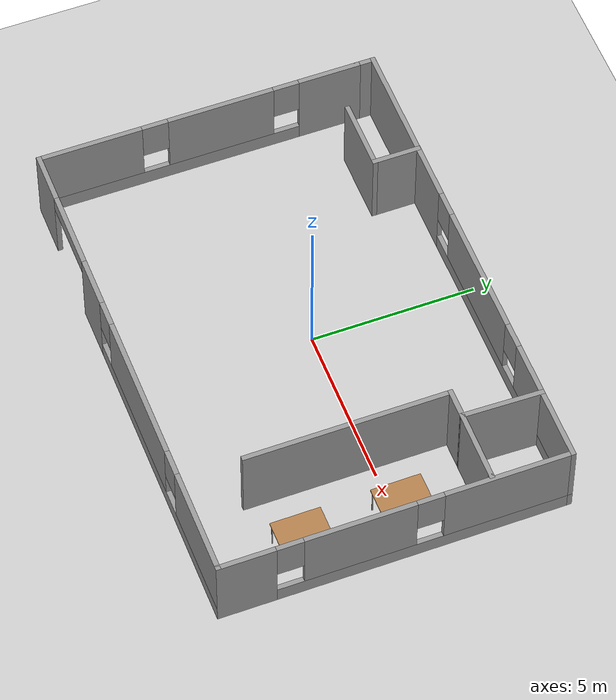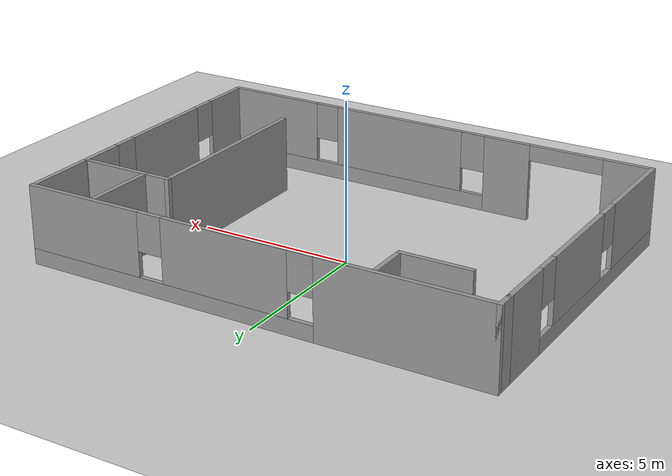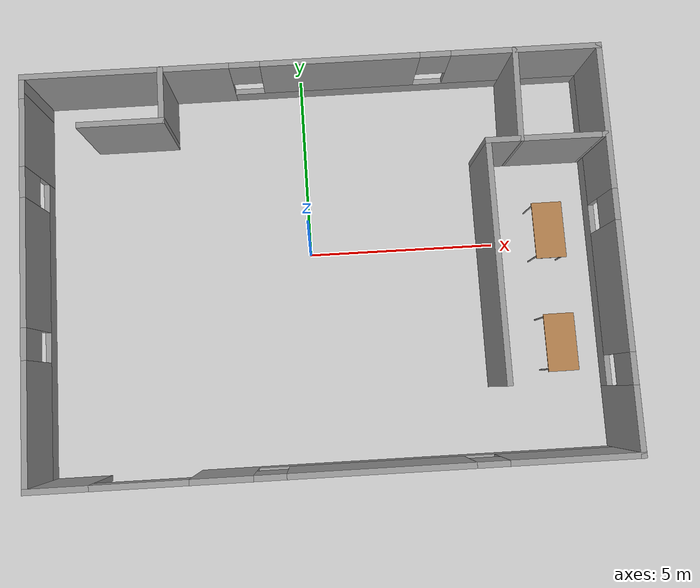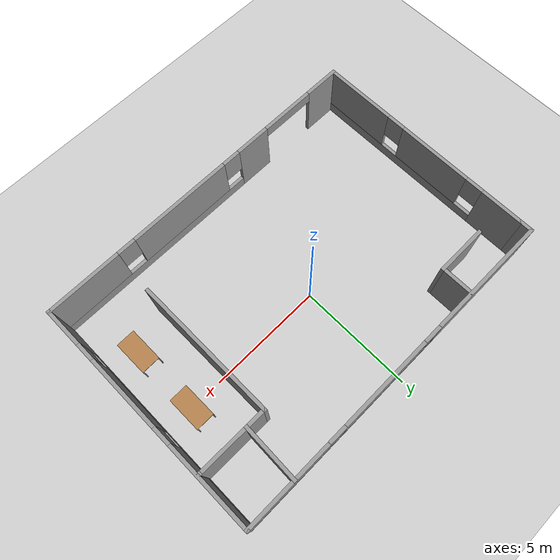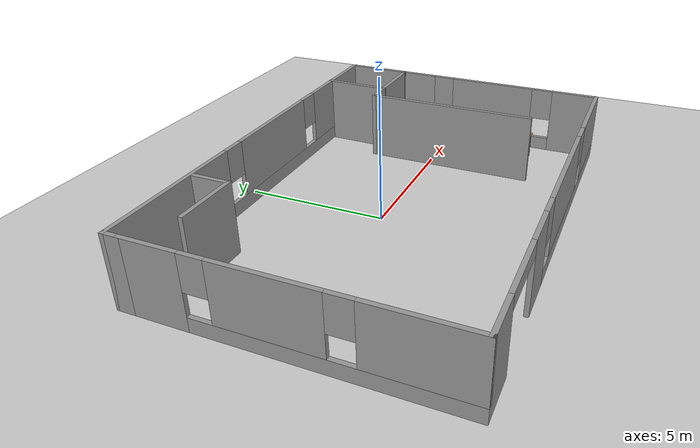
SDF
<sdf version="1.7">
 <world name="default">
  <light name="sun" type="directional">
   <pose>0 0 10 0 -0 0</pose>
   <diffuse>0.8 0.8 0.8 1</diffuse>
   <specular>0.2 0.2 0.2 1</specular>
   <attenuation>
    <range>1000</range>
    <constant>0.9</constant>
    <linear>0.01</linear>
    <quadratic>0.001</quadratic>
   </attenuation>
   <direction>-0.5 0.1 -0.9</direction>
   <spot><inner_angle>0</inner_angle><outer_angle>0</outer_angle><falloff>0</falloff></spot>
  </light>
  <model name="ground_plane">
   <static>1</static>
   <link name="link">
    <collision name="collision">
     <geometry><plane><normal>0 0 1</normal><size>100 100</size></plane></geometry>
     <surface><friction><ode><mu>100</mu><mu2>50</mu2></ode></friction></surface>
    </collision>
    <visual name="visual">
     <cast_shadows>0</cast_shadows>
     <geometry><plane><normal>0 0 1</normal><size>100 100</size></plane></geometry>
     <material>
      <script><uri>file://media/materials/scripts/gazebo.material</uri><name>Gazebo/Grey</name></script>
     </material>
    </visual>
   </link>
  </model>
  <gravity>0 0 -9.8</gravity>
  <magnetic_field>6e-06 2.3e-05 -4.2e-05</magnetic_field>
  <atmosphere type="adiabatic"/>
  <physics type="ode">
   <max_step_size>0.001</max_step_size>
   <real_time_factor>1</real_time_factor>
   <real_time_update_rate>1000</real_time_update_rate>
  </physics>
  <scene><ambient>0.4 0.4 0.4 1</ambient><background>0.7 0.7 0.7 1</background><shadows>1</shadows></scene>
  <audio><device>default</device></audio>
  <spherical_coordinates>
   <surface_model>EARTH_WGS84</surface_model>
   <latitude_deg>0</latitude_deg>
   <longitude_deg>0</longitude_deg>
   <elevation>0</elevation>
   <heading_deg>0</heading_deg>
  </spherical_coordinates>
  <model name="dining_room">
   <pose>0.289293 -0.512445 0 0 -0 0</pose>
   <link name="Wall_10">
    <pose>-0 -5.175 0 0 -0 0</pose>
    <visual name="Wall_10_Visual_0">
     <pose>-6.70154 0 1.25 0 -0 0</pose>
     <geometry><box><size>1.59693 0.15 2.5</size></box></geometry>
     <material>
      <script><uri>file://media/materials/scripts/gazebo.material</uri><name>Gazebo/Grey</name></script>
      <ambient>1 1 1 1</ambient>
     </material>
     <meta><layer>0</layer></meta>
    </visual>
    <collision name="Wall_10_Collision_0">
     <geometry><box><size>1.59693 0.15 2.5</size></box></geometry>
     <pose>-6.70154 0 1.25 0 -0 0</pose>
    </collision>
    <visual name="Wall_10_Visual_1">
     <pose>-2.72757 0 1.25 0 -0 0</pose>
     <geometry><box><size>1.54402 0.15 2.5</size></box></geometry>
     <material>
      <script><uri>file://media/materials/scripts/gazebo.material</uri><name>Gazebo/Grey</name></script>
      <ambient>1 1 1 1</ambient>
     </material>
     <meta><layer>0</layer></meta>
    </visual>
    <collision name="Wall_10_Collision_1">
     <geometry><box><size>1.54402 0.15 2.5</size></box></geometry>
     <pose>-2.72757 0 1.25 0 -0 0</pose>
    </collision>
    <visual name="Wall_10_Visual_2">
     <pose>2.77222 0 0.25 0 -0 0</pose>
     <geometry><box><size>9.45557 0.15 0.5</size></box></geometry>
     <material>
      <script><uri>file://media/materials/scripts/gazebo.material</uri><name>Gazebo/Grey</name></script>
      <ambient>1 1 1 1</ambient>
     </material>
     <meta><layer>0</layer></meta>
    </visual>
    <collision name="Wall_10_Collision_2">
     <geometry><box><size>9.45557 0.15 0.5</size></box></geometry>
     <pose>2.77222 0 0.25 0 -0 0</pose>
    </collision>
    <visual name="Wall_10_Visual_3">
     <pose>1.12758 0 1.5 0 -0 0</pose>
     <geometry><box><size>4.5663 0.15 2</size></box></geometry>
     <material>
      <script><uri>file://media/materials/scripts/gazebo.material</uri><name>Gazebo/Grey</name></script>
      <ambient>1 1 1 1</ambient>
     </material>
     <meta><layer>0</layer></meta>
    </visual>
    <collision name="Wall_10_Collision_3">
     <geometry><box><size>4.5663 0.15 2</size></box></geometry>
     <pose>1.12758 0 1.5 0 -0 0</pose>
    </collision>
    <visual name="Wall_10_Visual_4">
     <pose>5.85537 0 1.5 0 -0 0</pose>
     <geometry><box><size>3.28926 0.15 2</size></box></geometry>
     <material>
      <script><uri>file://media/materials/scripts/gazebo.material</uri><name>Gazebo/Grey</name></script>
      <ambient>1 1 1 1</ambient>
     </material>
     <meta><layer>0</layer></meta>
    </visual>
    <collision name="Wall_10_Collision_4">
     <geometry><box><size>3.28926 0.15 2</size></box></geometry>
     <pose>5.85537 0 1.5 0 -0 0</pose>
    </collision>
    <visual name="Wall_10_Visual_5">
     <pose>-1.55557 0 1.9 0 -0 0</pose>
     <geometry><box><size>0.8 0.15 1.2</size></box></geometry>
     <material>
      <script><uri>file://media/materials/scripts/gazebo.material</uri><name>Gazebo/Grey</name></script>
      <ambient>1 1 1 1</ambient>
     </material>
     <meta><layer>0</layer></meta>
    </visual>
    <collision name="Wall_10_Collision_5">
     <geometry><box><size>0.8 0.15 1.2</size></box></geometry>
     <pose>-1.55557 0 1.9 0 -0 0</pose>
    </collision>
    <visual name="Wall_10_Visual_6">
     <pose>3.81074 0 1.9 0 -0 0</pose>
     <geometry><box><size>0.8 0.15 1.2</size></box></geometry>
     <material>
      <script><uri>file://media/materials/scripts/gazebo.material</uri><name>Gazebo/Grey</name></script>
      <ambient>1 1 1 1</ambient>
     </material>
     <meta><layer>0</layer></meta>
    </visual>
    <collision name="Wall_10_Collision_6">
     <geometry><box><size>0.8 0.15 1.2</size></box></geometry>
     <pose>3.81074 0 1.9 0 -0 0</pose>
    </collision>
    <visual name="Wall_10_Visual_7">
     <pose>-4.70133 0 2.25 0 -0 0</pose>
     <geometry><box><size>2.40349 0.15 0.5</size></box></geometry>
     <material>
      <script><uri>file://media/materials/scripts/gazebo.material</uri><name>Gazebo/Grey</name></script>
      <ambient>1 1 1 1</ambient>
     </material>
     <meta><layer>0</layer></meta>
    </visual>
    <collision name="Wall_10_Collision_7">
     <geometry><box><size>2.40349 0.15 0.5</size></box></geometry>
     <pose>-4.70133 0 2.25 0 -0 0</pose>
    </collision>
   </link>
   <link name="Wall_11">
    <pose>7.425 0 0 0 -0 1.5708</pose>
    <visual name="Wall_11_Visual_0">
     <pose>-4.37591 0 1.25 0 -0 0</pose>
     <geometry><box><size>1.74817 0.15 2.5</size></box></geometry>
     <material>
      <script><uri>file://media/materials/scripts/gazebo.material</uri><name>Gazebo/Grey</name></script>
      <ambient>1 1 1 1</ambient>
     </material>
     <meta><layer>0</layer></meta>
    </visual>
    <collision name="Wall_11_Collision_0">
     <geometry><box><size>1.74817 0.15 2.5</size></box></geometry>
     <pose>-4.37591 0 1.25 0 -0 0</pose>
    </collision>
    <visual name="Wall_11_Visual_1">
     <pose>0.874085 0 0.25 0 -0 0</pose>
     <geometry><box><size>8.75183 0.15 0.5</size></box></geometry>
     <material>
      <script><uri>file://media/materials/scripts/gazebo.material</uri><name>Gazebo/Grey</name></script>
      <ambient>1 1 1 1</ambient>
     </material>
     <meta><layer>0</layer></meta>
    </visual>
    <collision name="Wall_11_Collision_1">
     <geometry><box><size>8.75183 0.15 0.5</size></box></geometry>
     <pose>0.874085 0 0.25 0 -0 0</pose>
    </collision>
    <visual name="Wall_11_Visual_2">
     <pose>-1.05477 0 1.5 0 -0 0</pose>
     <geometry><box><size>3.29412 0.15 2</size></box></geometry>
     <material>
      <script><uri>file://media/materials/scripts/gazebo.material</uri><name>Gazebo/Grey</name></script>
      <ambient>1 1 1 1</ambient>
     </material>
     <meta><layer>0</layer></meta>
    </visual>
    <collision name="Wall_11_Collision_2">
     <geometry><box><size>3.29412 0.15 2</size></box></geometry>
     <pose>-1.05477 0 1.5 0 -0 0</pose>
    </collision>
    <visual name="Wall_11_Visual_3">
     <pose>3.32114 0 1.5 0 -0 0</pose>
     <geometry><box><size>3.85771 0.15 2</size></box></geometry>
     <material>
      <script><uri>file://media/materials/scripts/gazebo.material</uri><name>Gazebo/Grey</name></script>
      <ambient>1 1 1 1</ambient>
     </material>
     <meta><layer>0</layer></meta>
    </visual>
    <collision name="Wall_11_Collision_3">
     <geometry><box><size>3.85771 0.15 2</size></box></geometry>
     <pose>3.32114 0 1.5 0 -0 0</pose>
    </collision>
    <visual name="Wall_11_Visual_4">
     <pose>-3.10183 0 1.9 0 -0 0</pose>
     <geometry><box><size>0.8 0.15 1.2</size></box></geometry>
     <material>
      <script><uri>file://media/materials/scripts/gazebo.material</uri><name>Gazebo/Grey</name></script>
      <ambient>1 1 1 1</ambient>
     </material>
     <meta><layer>0</layer></meta>
    </visual>
    <collision name="Wall_11_Collision_4">
     <geometry><box><size>0.8 0.15 1.2</size></box></geometry>
     <pose>-3.10183 0 1.9 0 -0 0</pose>
    </collision>
    <visual name="Wall_11_Visual_5">
     <pose>0.992287 0 1.9 0 -0 0</pose>
     <geometry><box><size>0.8 0.15 1.2</size></box></geometry>
     <material>
      <script><uri>file://media/materials/scripts/gazebo.material</uri><name>Gazebo/Grey</name></script>
      <ambient>1 1 1 1</ambient>
     </material>
     <meta><layer>0</layer></meta>
    </visual>
    <collision name="Wall_11_Collision_5">
     <geometry><box><size>0.8 0.15 1.2</size></box></geometry>
     <pose>0.992287 0 1.9 0 -0 0</pose>
    </collision>
   </link>
   <link name="Wall_13">
    <collision name="Wall_13_Collision">
     <geometry><box><size>0.65 0.15 2.5</size></box></geometry>
     <pose>0 0 1.25 0 -0 0</pose>
    </collision>
    <visual name="Wall_13_Visual">
     <pose>0 0 1.25 0 -0 0</pose>
     <geometry><box><size>0.65 0.15 2.5</size></box></geometry>
     <material>
      <script><uri>file://media/materials/scripts/gazebo.material</uri><name>Gazebo/Grey</name></script>
      <ambient>1 1 1 1</ambient>
     </material>
     <meta><layer>0</layer></meta>
    </visual>
    <pose>-7.425 4.925 0 0 -0 -1.5708</pose>
   </link>
   <link name="Wall_15">
    <pose>-0 5.175 0 0 -0 0</pose>
    <visual name="Wall_15_Visual_0">
     <pose>-4.80874 0 1.25 0 -0 0</pose>
     <geometry><box><size>5.38252 0.15 2.5</size></box></geometry>
     <material>
      <script><uri>file://media/materials/scripts/gazebo.material</uri><name>Gazebo/Grey</name></script>
      <ambient>1 1 1 1</ambient>
     </material>
     <meta><layer>0</layer></meta>
    </visual>
    <collision name="Wall_15_Collision_0">
     <geometry><box><size>5.38252 0.15 2.5</size></box></geometry>
     <pose>-4.80874 0 1.25 0 -0 0</pose>
    </collision>
    <visual name="Wall_15_Visual_1">
     <pose>2.69126 0 0.25 0 -0 0</pose>
     <geometry><box><size>9.61748 0.15 0.5</size></box></geometry>
     <material>
      <script><uri>file://media/materials/scripts/gazebo.material</uri><name>Gazebo/Grey</name></script>
      <ambient>1 1 1 1</ambient>
     </material>
     <meta><layer>0</layer></meta>
    </visual>
    <collision name="Wall_15_Collision_1">
     <geometry><box><size>9.61748 0.15 0.5</size></box></geometry>
     <pose>2.69126 0 0.25 0 -0 0</pose>
    </collision>
    <visual name="Wall_15_Visual_2">
     <pose>0.745929 0 1.5 0 -0 0</pose>
     <geometry><box><size>4.12682 0.15 2</size></box></geometry>
     <material>
      <script><uri>file://media/materials/scripts/gazebo.material</uri><name>Gazebo/Grey</name></script>
      <ambient>1 1 1 1</ambient>
     </material>
     <meta><layer>0</layer></meta>
    </visual>
    <collision name="Wall_15_Collision_2">
     <geometry><box><size>4.12682 0.15 2</size></box></geometry>
     <pose>0.745929 0 1.5 0 -0 0</pose>
    </collision>
    <visual name="Wall_15_Visual_3">
     <pose>5.55467 0 1.5 0 -0 0</pose>
     <geometry><box><size>3.89066 0.15 2</size></box></geometry>
     <material>
      <script><uri>file://media/materials/scripts/gazebo.material</uri><name>Gazebo/Grey</name></script>
      <ambient>1 1 1 1</ambient>
     </material>
     <meta><layer>0</layer></meta>
    </visual>
    <collision name="Wall_15_Collision_3">
     <geometry><box><size>3.89066 0.15 2</size></box></geometry>
     <pose>5.55467 0 1.5 0 -0 0</pose>
    </collision>
    <visual name="Wall_15_Visual_4">
     <pose>-1.71748 0 1.9 0 -0 0</pose>
     <geometry><box><size>0.8 0.15 1.2</size></box></geometry>
     <material>
      <script><uri>file://media/materials/scripts/gazebo.material</uri><name>Gazebo/Grey</name></script>
      <ambient>1 1 1 1</ambient>
     </material>
     <meta><layer>0</layer></meta>
    </visual>
    <collision name="Wall_15_Collision_4">
     <geometry><box><size>0.8 0.15 1.2</size></box></geometry>
     <pose>-1.71748 0 1.9 0 -0 0</pose>
    </collision>
    <visual name="Wall_15_Visual_5">
     <pose>3.20934 0 1.9 0 -0 0</pose>
     <geometry><box><size>0.8 0.15 1.2</size></box></geometry>
     <material>
      <script><uri>file://media/materials/scripts/gazebo.material</uri><name>Gazebo/Grey</name></script>
      <ambient>1 1 1 1</ambient>
     </material>
     <meta><layer>0</layer></meta>
    </visual>
    <collision name="Wall_15_Collision_5">
     <geometry><box><size>0.8 0.15 1.2</size></box></geometry>
     <pose>3.20934 0 1.9 0 -0 0</pose>
    </collision>
   </link>
   <link name="Wall_17">
    <collision name="Wall_17_Collision">
     <geometry><box><size>2.5 0.15 2.5</size></box></geometry>
     <pose>0 0 1.25 0 -0 0</pose>
    </collision>
    <visual name="Wall_17_Visual">
     <pose>0 0 1.25 0 -0 0</pose>
     <geometry><box><size>2.5 0.15 2.5</size></box></geometry>
     <material>
      <script><uri>file://media/materials/scripts/gazebo.material</uri><name>Gazebo/Grey</name></script>
      <ambient>1 1 1 1</ambient>
     </material>
     <meta><layer>0</layer></meta>
    </visual>
    <pose>5.23407 3.99661 0 0 -0 -1.59792</pose>
   </link>
   <link name="Wall_18">
    <collision name="Wall_18_Collision">
     <geometry><box><size>2.27928 0.15 2.5</size></box></geometry>
     <pose>0 0 1.25 0 -0 0</pose>
    </collision>
    <visual name="Wall_18_Visual">
     <pose>0 0 1.25 0 -0 0</pose>
     <geometry><box><size>2.27928 0.15 2.5</size></box></geometry>
     <material>
      <script><uri>file://media/materials/scripts/gazebo.material</uri><name>Gazebo/Grey</name></script>
      <ambient>1 1 1 1</ambient>
     </material>
     <meta><layer>0</layer></meta>
    </visual>
    <pose>6.26682 2.81586 0 0 -0 -0.005401</pose>
   </link>
   <link name="Wall_19">
    <collision name="Wall_19_Collision">
     <geometry><box><size>0.16 0.15 2.5</size></box></geometry>
     <pose>0 0 1.25 0 -0 0</pose>
    </collision>
    <visual name="Wall_19_Visual">
     <pose>0 0 1.25 0 -0 0</pose>
     <geometry><box><size>0.16 0.15 2.5</size></box></geometry>
     <material>
      <script><uri>file://media/materials/scripts/gazebo.material</uri><name>Gazebo/Grey</name></script>
      <ambient>0 0 0 1</ambient>
     </material>
     <meta><layer>0</layer></meta>
    </visual>
    <pose>7.34794 2.81011 0 0 -0 0</pose>
   </link>
   <link name="Wall_20">
    <collision name="Wall_20_Collision">
     <geometry><box><size>1.5 0.15 2.5</size></box></geometry>
     <pose>0 0 1.25 0 -0 0</pose>
    </collision>
    <visual name="Wall_20_Visual">
     <pose>0 0 1.25 0 -0 0</pose>
     <geometry><box><size>1.5 0.15 2.5</size></box></geometry>
     <material>
      <script><uri>file://media/materials/scripts/gazebo.material</uri><name>Gazebo/Grey</name></script>
      <ambient>1 1 1 1</ambient>
     </material>
     <meta><layer>0</layer></meta>
    </visual>
    <pose>-3.88452 4.49661 0 0 -0 -1.5708</pose>
   </link>
   <link name="Wall_21">
    <collision name="Wall_21_Collision">
     <geometry><box><size>2.25 0.15 2.5</size></box></geometry>
     <pose>0 0 1.25 0 -0 0</pose>
    </collision>
    <visual name="Wall_21_Visual">
     <pose>0 0 1.25 0 -0 0</pose>
     <geometry><box><size>2.25 0.15 2.5</size></box></geometry>
     <material>
      <script><uri>file://media/materials/scripts/gazebo.material</uri><name>Gazebo/Grey</name></script>
      <ambient>1 1 1 1</ambient>
     </material>
     <meta><layer>0</layer></meta>
    </visual>
    <pose>-4.93452 3.82161 0 0 -0 3.14159</pose>
   </link>
   <link name="Wall_30">
    <collision name="Wall_30_Collision">
     <geometry><box><size>0.98251 0.15 2.5</size></box></geometry>
     <pose>0 0 1.25 0 -0 0</pose>
    </collision>
    <visual name="Wall_30_Visual">
     <pose>0 0 1.25 0 -0 0</pose>
     <geometry><box><size>0.98251 0.15 2.5</size></box></geometry>
     <material>
      <script><uri>file://media/materials/scripts/gazebo.material</uri><name>Gazebo/Grey</name></script>
      <ambient>1 1 1 1</ambient>
     </material>
     <meta><layer>0</layer></meta>
    </visual>
    <pose>4.78594 2.82161 0 0 -0 0</pose>
   </link>
   <link name="Wall_32">
    <collision name="Wall_32_Collision">
     <geometry><box><size>6.25 0.15 2.5</size></box></geometry>
     <pose>0 0 1.25 0 -0 0</pose>
    </collision>
    <visual name="Wall_32_Visual">
     <pose>0 0 1.25 0 -0 0</pose>
     <geometry><box><size>6.25 0.15 2.5</size></box></geometry>
     <material>
      <script><uri>file://media/materials/scripts/gazebo.material</uri><name>Gazebo/Grey</name></script>
      <ambient>1 1 1 1</ambient>
     </material>
     <meta><layer>0</layer></meta>
    </visual>
    <pose>4.36968 -0.228387 0 0 -0 -1.5708</pose>
   </link>
   <link name="Wall_9">
    <pose>-7.425 -0.25 0 0 -0 -1.5708</pose>
    <visual name="Wall_9_Visual_0">
     <pose>-4.03819 0 1.25 0 -0 0</pose>
     <geometry><box><size>1.92362 0.15 2.5</size></box></geometry>
     <material>
      <script><uri>file://media/materials/scripts/gazebo.material</uri><name>Gazebo/Grey</name></script>
      <ambient>1 1 1 1</ambient>
     </material>
     <meta><layer>0</layer></meta>
    </visual>
    <collision name="Wall_9_Collision_0">
     <geometry><box><size>1.92362 0.15 2.5</size></box></geometry>
     <pose>-4.03819 0 1.25 0 -0 0</pose>
    </collision>
    <visual name="Wall_9_Visual_1">
     <pose>0.961808 0 0.25 0 -0 0</pose>
     <geometry><box><size>8.07638 0.15 0.5</size></box></geometry>
     <material>
      <script><uri>file://media/materials/scripts/gazebo.material</uri><name>Gazebo/Grey</name></script>
      <ambient>1 1 1 1</ambient>
     </material>
     <meta><layer>0</layer></meta>
    </visual>
    <collision name="Wall_9_Collision_1">
     <geometry><box><size>8.07638 0.15 0.5</size></box></geometry>
     <pose>0.961808 0 0.25 0 -0 0</pose>
    </collision>
    <visual name="Wall_9_Visual_2">
     <pose>-0.640891 0 1.5 0 -0 0</pose>
     <geometry><box><size>3.27099 0.15 2</size></box></geometry>
     <material>
      <script><uri>file://media/materials/scripts/gazebo.material</uri><name>Gazebo/Grey</name></script>
      <ambient>1 1 1 1</ambient>
     </material>
     <meta><layer>0</layer></meta>
    </visual>
    <collision name="Wall_9_Collision_2">
     <geometry><box><size>3.27099 0.15 2</size></box></geometry>
     <pose>-0.640891 0 1.5 0 -0 0</pose>
    </collision>
    <visual name="Wall_9_Visual_3">
     <pose>3.3973 0 1.5 0 -0 0</pose>
     <geometry><box><size>3.2054 0.15 2</size></box></geometry>
     <material>
      <script><uri>file://media/materials/scripts/gazebo.material</uri><name>Gazebo/Grey</name></script>
      <ambient>1 1 1 1</ambient>
     </material>
     <meta><layer>0</layer></meta>
    </visual>
    <collision name="Wall_9_Collision_3">
     <geometry><box><size>3.2054 0.15 2</size></box></geometry>
     <pose>3.3973 0 1.5 0 -0 0</pose>
    </collision>
    <visual name="Wall_9_Visual_4">
     <pose>-2.67638 0 1.9 0 -0 0</pose>
     <geometry><box><size>0.8 0.15 1.2</size></box></geometry>
     <material>
      <script><uri>file://media/materials/scripts/gazebo.material</uri><name>Gazebo/Grey</name></script>
      <ambient>1 1 1 1</ambient>
     </material>
     <meta><layer>0</layer></meta>
    </visual>
    <collision name="Wall_9_Collision_4">
     <geometry><box><size>0.8 0.15 1.2</size></box></geometry>
     <pose>-2.67638 0 1.9 0 -0 0</pose>
    </collision>
    <visual name="Wall_9_Visual_5">
     <pose>1.3946 0 1.9 0 -0 0</pose>
     <geometry><box><size>0.8 0.15 1.2</size></box></geometry>
     <material>
      <script><uri>file://media/materials/scripts/gazebo.material</uri><name>Gazebo/Grey</name></script>
      <ambient>1 1 1 1</ambient>
     </material>
     <meta><layer>0</layer></meta>
    </visual>
    <collision name="Wall_9_Collision_5">
     <geometry><box><size>0.8 0.15 1.2</size></box></geometry>
     <pose>1.3946 0 1.9 0 -0 0</pose>
    </collision>
   </link>
   <static>1</static>
  </model>
  <model name="table">
   <static>1</static>
   <link name="link">
    <collision name="surface">
     <pose>0 0 1 0 -0 0</pose>
     <geometry><box><size>1.5 0.8 0.03</size></box></geometry>
     <surface><friction><ode><mu>0.6</mu><mu2>0.6</mu2></ode></friction></surface>
    </collision>
    <visual name="visual1">
     <pose>0 0 1 0 -0 0</pose>
     <geometry><box><size>1.5 0.8 0.03</size></box></geometry>
     <material>
      <script><uri>file://media/materials/scripts/gazebo.material</uri><name>Gazebo/Wood</name></script>
     </material>
    </visual>
    <collision name="front_left_leg">
     <pose>0.68 0.38 0.5 0 -0 0</pose>
     <geometry><cylinder><radius>0.02</radius><length>1</length></cylinder></geometry>
    </collision>
    <visual name="front_left_leg">
     <pose>0.68 0.38 0.5 0 -0 0</pose>
     <geometry><cylinder><radius>0.02</radius><length>1</length></cylinder></geometry>
     <material>
      <script><uri>file://media/materials/scripts/gazebo.material</uri><name>Gazebo/Grey</name></script>
     </material>
    </visual>
    <collision name="front_right_leg">
     <pose>0.68 -0.38 0.5 0 -0 0</pose>
     <geometry><cylinder><radius>0.02</radius><length>1</length></cylinder></geometry>
    </collision>
    <visual name="front_right_leg">
     <pose>0.68 -0.38 0.5 0 -0 0</pose>
     <geometry><cylinder><radius>0.02</radius><length>1</length></cylinder></geometry>
     <material>
      <script><uri>file://media/materials/scripts/gazebo.material</uri><name>Gazebo/Grey</name></script>
     </material>
    </visual>
    <collision name="back_right_leg">
     <pose>-0.68 -0.38 0.5 0 -0 0</pose>
     <geometry><cylinder><radius>0.02</radius><length>1</length></cylinder></geometry>
    </collision>
    <visual name="back_right_leg">
     <pose>-0.68 -0.38 0.5 0 -0 0</pose>
     <geometry><cylinder><radius>0.02</radius><length>1</length></cylinder></geometry>
     <material>
      <script><uri>file://media/materials/scripts/gazebo.material</uri><name>Gazebo/Grey</name></script>
     </material>
    </visual>
    <collision name="back_left_leg">
     <pose>-0.68 0.38 0.5 0 -0 0</pose>
     <geometry><cylinder><radius>0.02</radius><length>1</length></cylinder></geometry>
    </collision>
    <visual name="back_left_leg">
     <pose>-0.68 0.38 0.5 0 -0 0</pose>
     <geometry><cylinder><radius>0.02</radius><length>1</length></cylinder></geometry>
     <material>
      <script><uri>file://media/materials/scripts/gazebo.material</uri><name>Gazebo/Grey</name></script>
     </material>
    </visual>
   </link>
   <pose>6.37007 0.169056 0 0 0 -1.56689</pose>
  </model>
  <model name="table_clone">
   <static>1</static>
   <link name="link">
    <collision name="surface">
     <pose>0 0 1 0 -0 0</pose>
     <geometry><box><size>1.5 0.8 0.03</size></box></geometry>
     <surface><friction><ode><mu>0.6</mu><mu2>0.6</mu2></ode></friction></surface>
    </collision>
    <visual name="visual1">
     <pose>0 0 1 0 -0 0</pose>
     <geometry><box><size>1.5 0.8 0.03</size></box></geometry>
     <material>
      <script><uri>file://media/materials/scripts/gazebo.material</uri><name>Gazebo/Wood</name></script>
     </material>
    </visual>
    <collision name="front_left_leg">
     <pose>0.68 0.38 0.5 0 -0 0</pose>
     <geometry><cylinder><radius>0.02</radius><length>1</length></cylinder></geometry>
    </collision>
    <visual name="front_left_leg">
     <pose>0.68 0.38 0.5 0 -0 0</pose>
     <geometry><cylinder><radius>0.02</radius><length>1</length></cylinder></geometry>
     <material>
      <script><uri>file://media/materials/scripts/gazebo.material</uri><name>Gazebo/Grey</name></script>
     </material>
    </visual>
    <collision name="front_right_leg">
     <pose>0.68 -0.38 0.5 0 -0 0</pose>
     <geometry><cylinder><radius>0.02</radius><length>1</length></cylinder></geometry>
    </collision>
    <visual name="front_right_leg">
     <pose>0.68 -0.38 0.5 0 -0 0</pose>
     <geometry><cylinder><radius>0.02</radius><length>1</length></cylinder></geometry>
     <material>
      <script><uri>file://media/materials/scripts/gazebo.material</uri><name>Gazebo/Grey</name></script>
     </material>
    </visual>
    <collision name="back_right_leg">
     <pose>-0.68 -0.38 0.5 0 -0 0</pose>
     <geometry><cylinder><radius>0.02</radius><length>1</length></cylinder></geometry>
    </collision>
    <visual name="back_right_leg">
     <pose>-0.68 -0.38 0.5 0 -0 0</pose>
     <geometry><cylinder><radius>0.02</radius><length>1</length></cylinder></geometry>
     <material>
      <script><uri>file://media/materials/scripts/gazebo.material</uri><name>Gazebo/Grey</name></script>
     </material>
    </visual>
    <collision name="back_left_leg">
     <pose>-0.68 0.38 0.5 0 -0 0</pose>
     <geometry><cylinder><radius>0.02</radius><length>1</length></cylinder></geometry>
    </collision>
    <visual name="back_left_leg">
     <pose>-0.68 0.38 0.5 0 -0 0</pose>
     <geometry><cylinder><radius>0.02</radius><length>1</length></cylinder></geometry>
     <material>
      <script><uri>file://media/materials/scripts/gazebo.material</uri><name>Gazebo/Grey</name></script>
     </material>
    </visual>
   </link>
   <pose>6.40401 -2.8157 0 0 0 -1.56689</pose>
  </model>
 </world>
</sdf>
